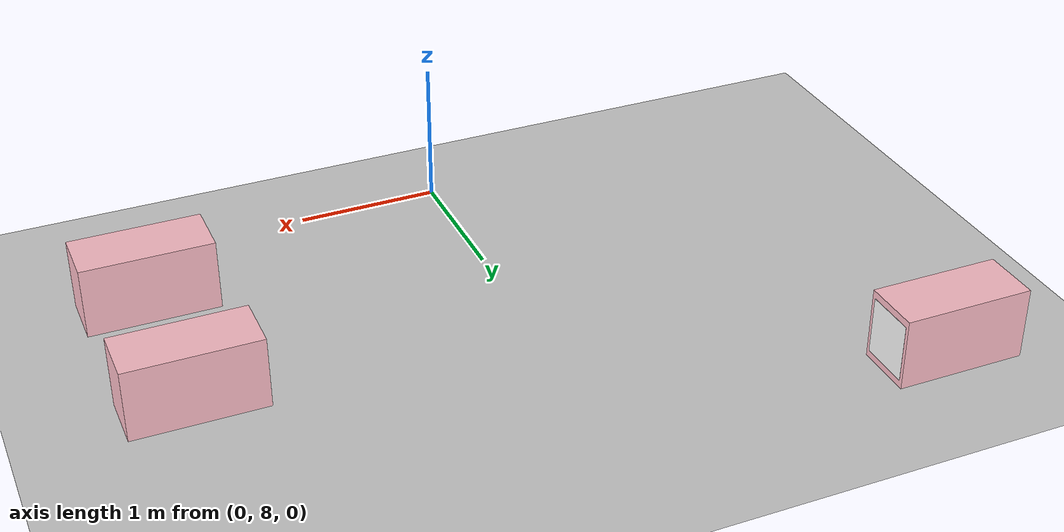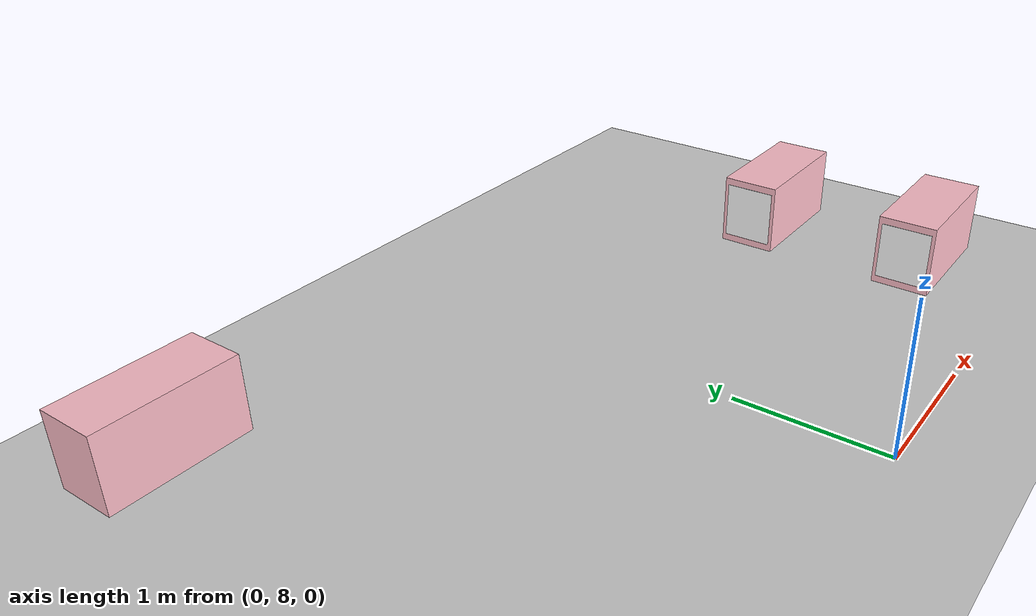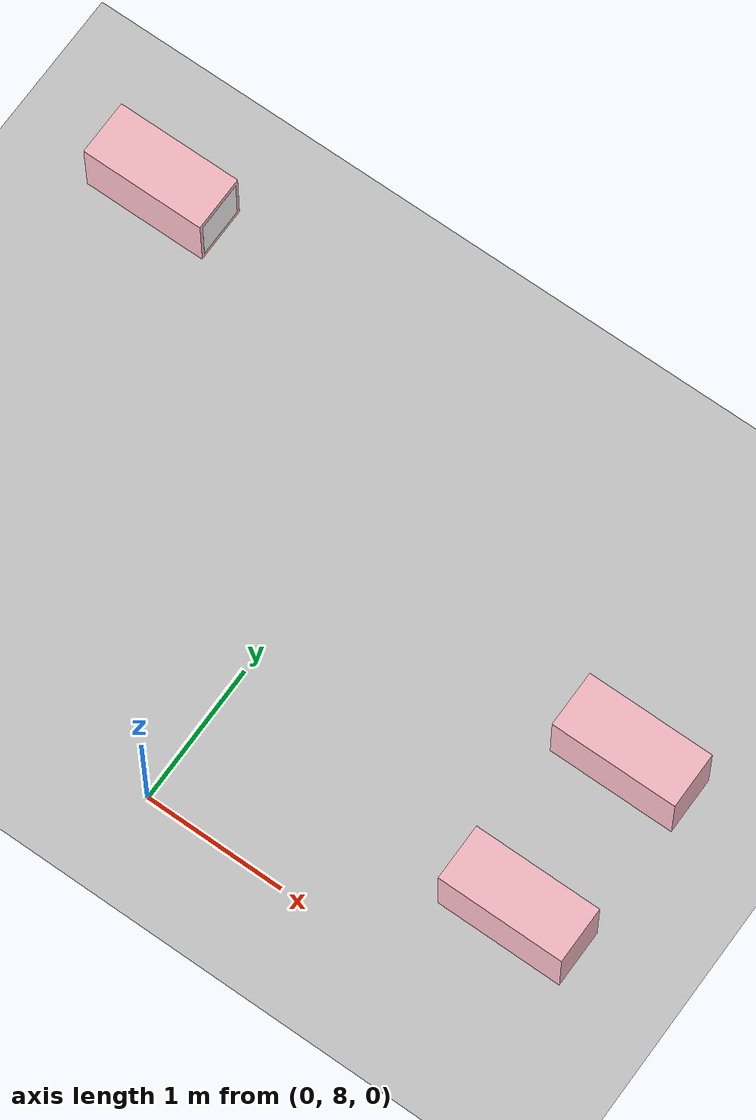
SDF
<sdf version="1.9">
 <world name="pig_pen_16units_world">
  <model name="ground_plane">
   <static>true</static>
   <link name="link">
    <collision name="collision">
     <geometry><plane><normal>0 0 1</normal><size>30 30</size></plane></geometry>
     <surface><friction><ode><mu>1.0</mu><mu2>1.0</mu2></ode></friction></surface>
    </collision>
    <visual name="visual">
     <geometry><plane><normal>0 0 1</normal><size>30 30</size></plane></geometry>
     <material>
      <ambient>0.8 0.8 0.8 1</ambient>
      <diffuse>0.8 0.8 0.8 1</diffuse>
      <specular>0.2 0.2 0.2 1</specular>
     </material>
    </visual>
   </link>
  </model>
  <include><uri>model://farm_pig</uri><name>pig7_a</name><pose>-2.275 11.265 0.27 0 0 0</pose></include>
  <include><uri>model://farm_pig</uri><name>pig15_b</name><pose>2.275 9.865 0.27 0 0 3.1416</pose></include>
  <include><uri>model://farm_pig</uri><name>pig16_a</name><pose>2.275 8.675 0.27 0 0 3.1416</pose></include>
 </world>
</sdf>
